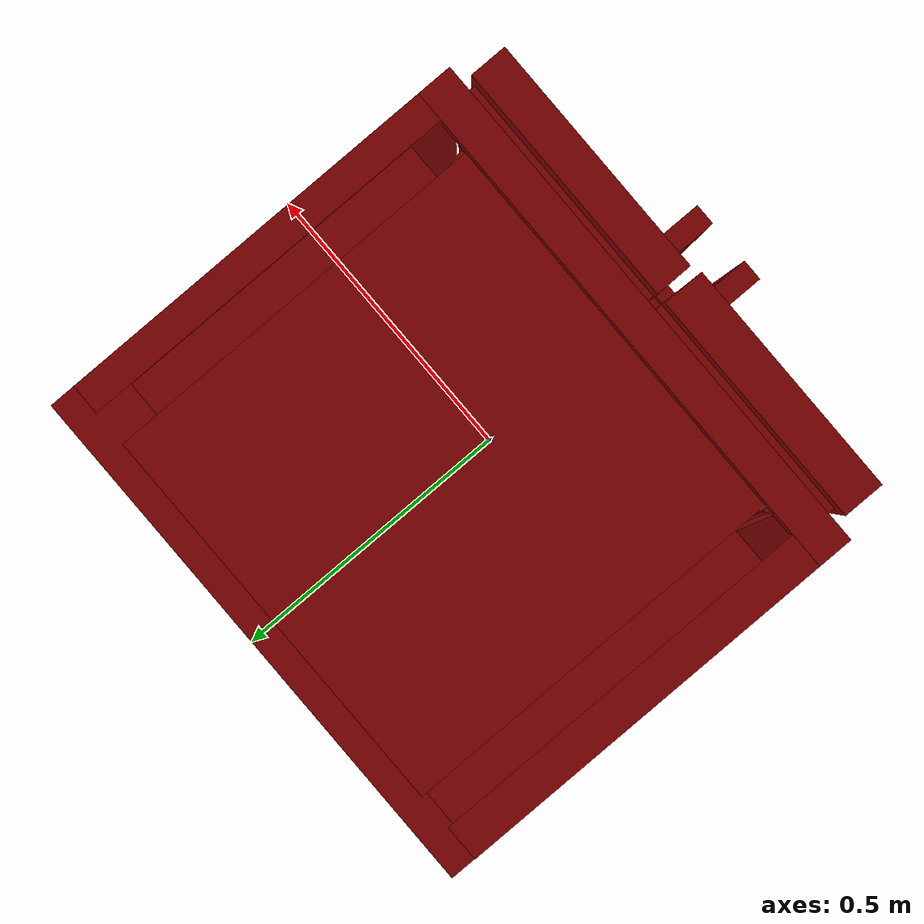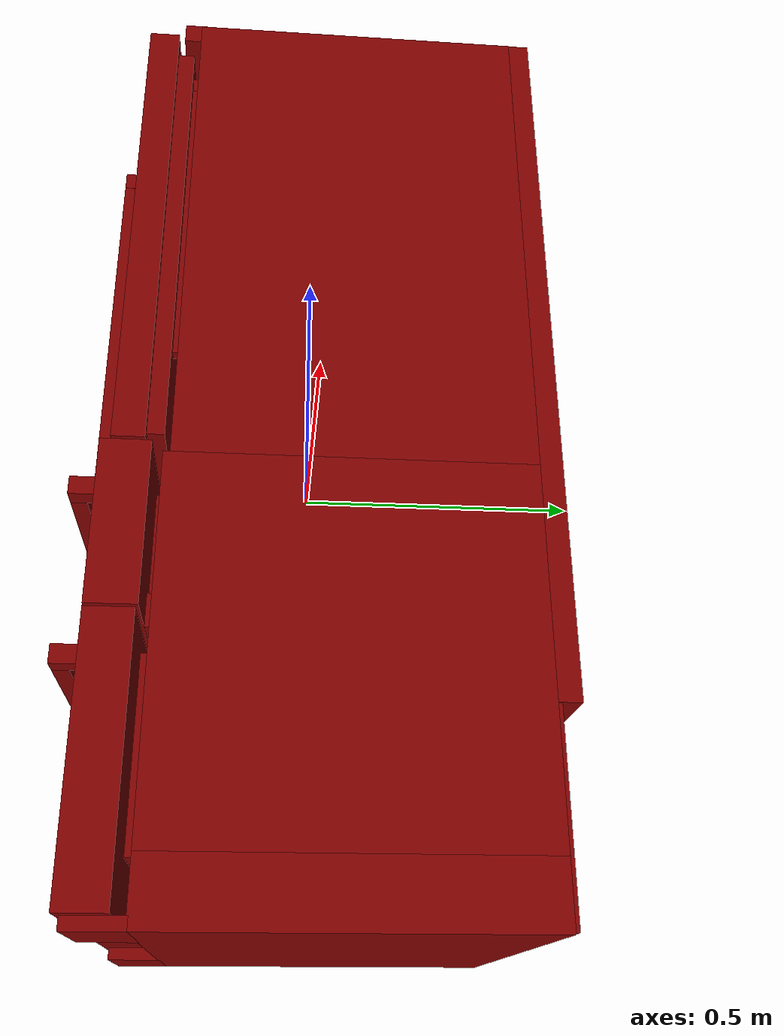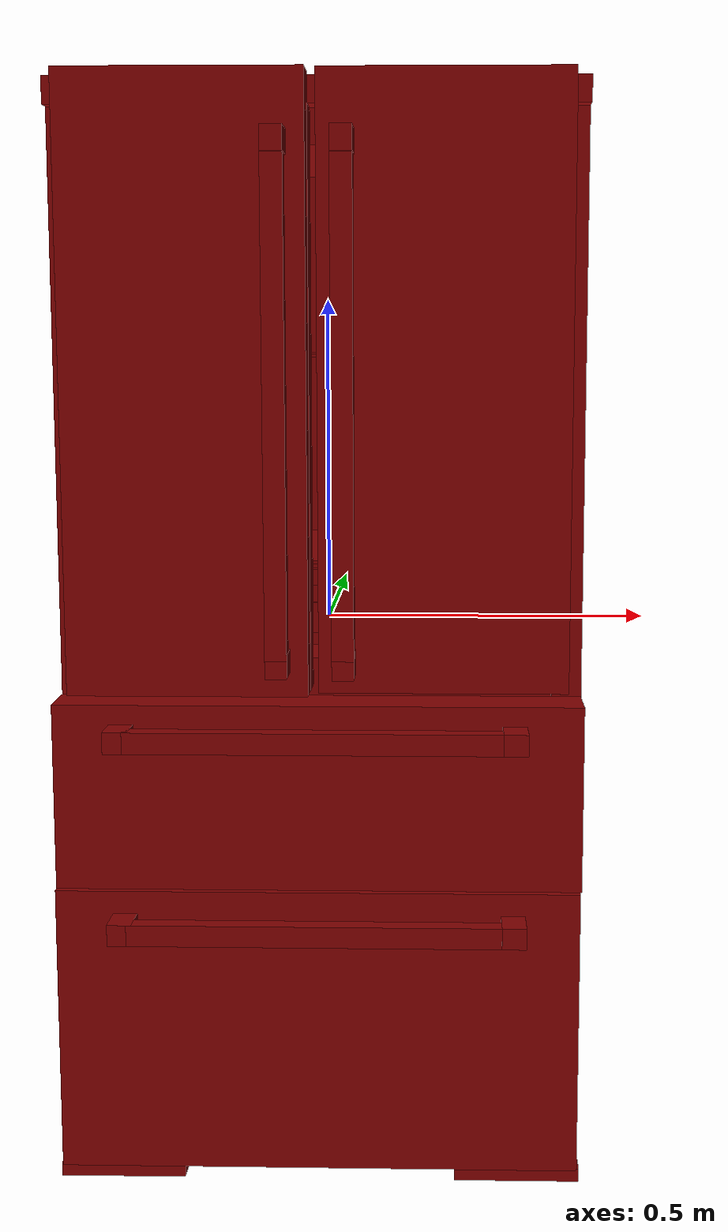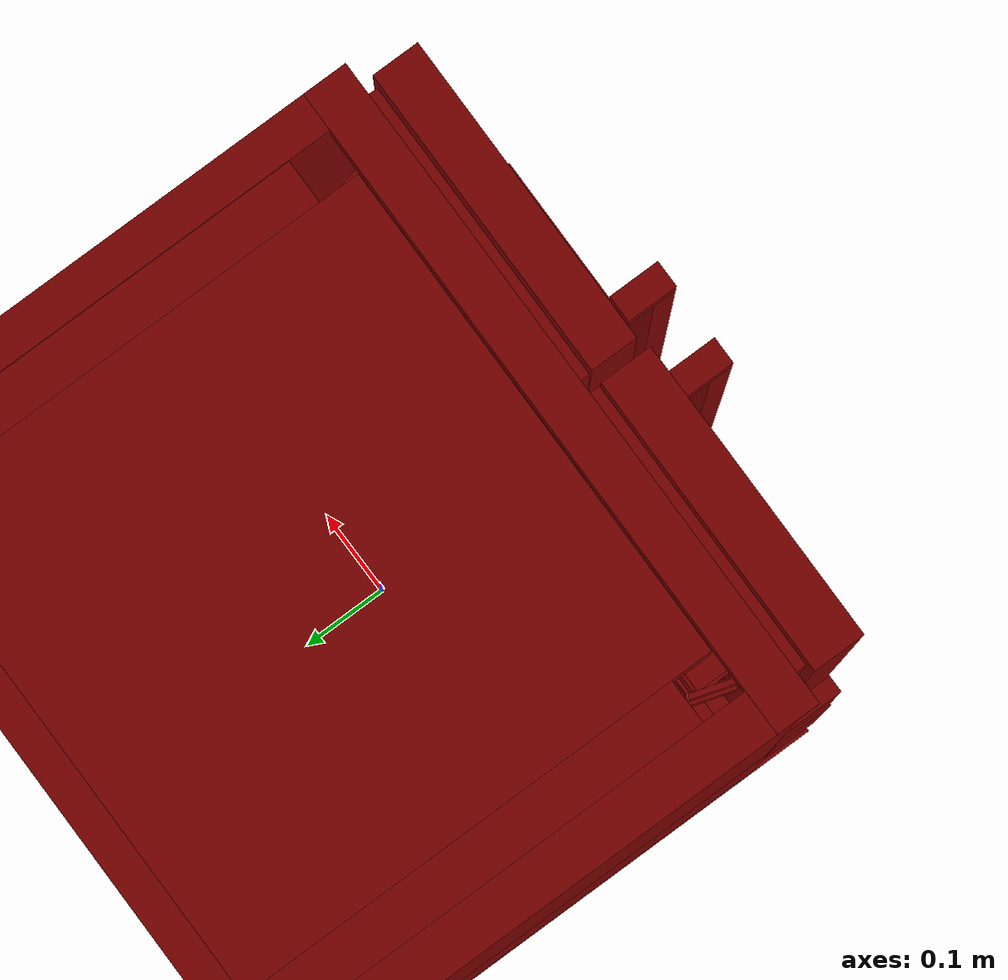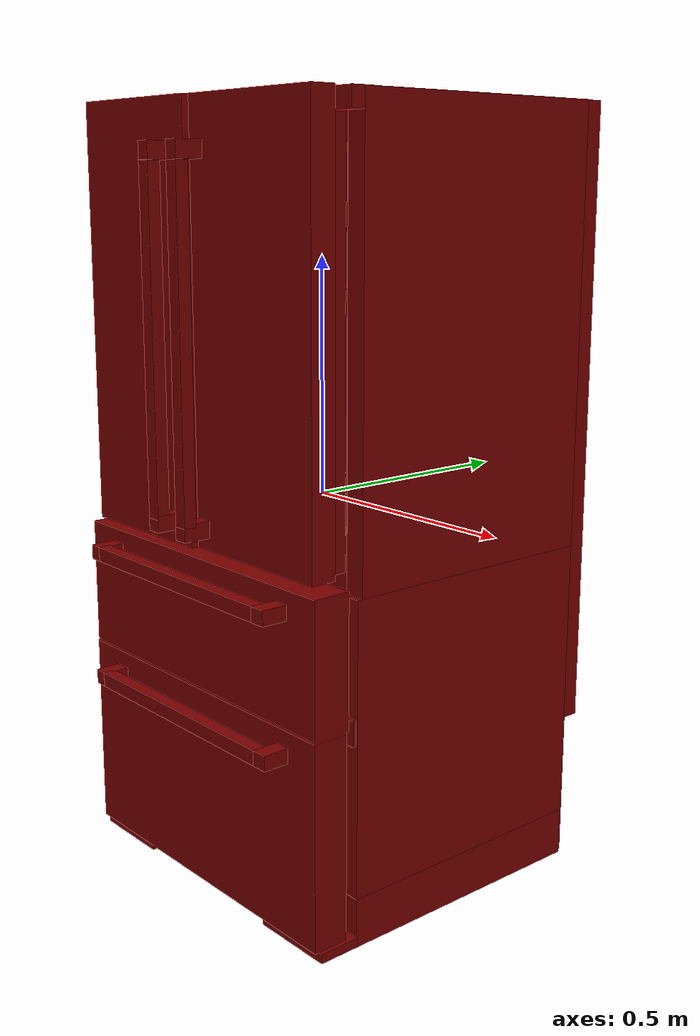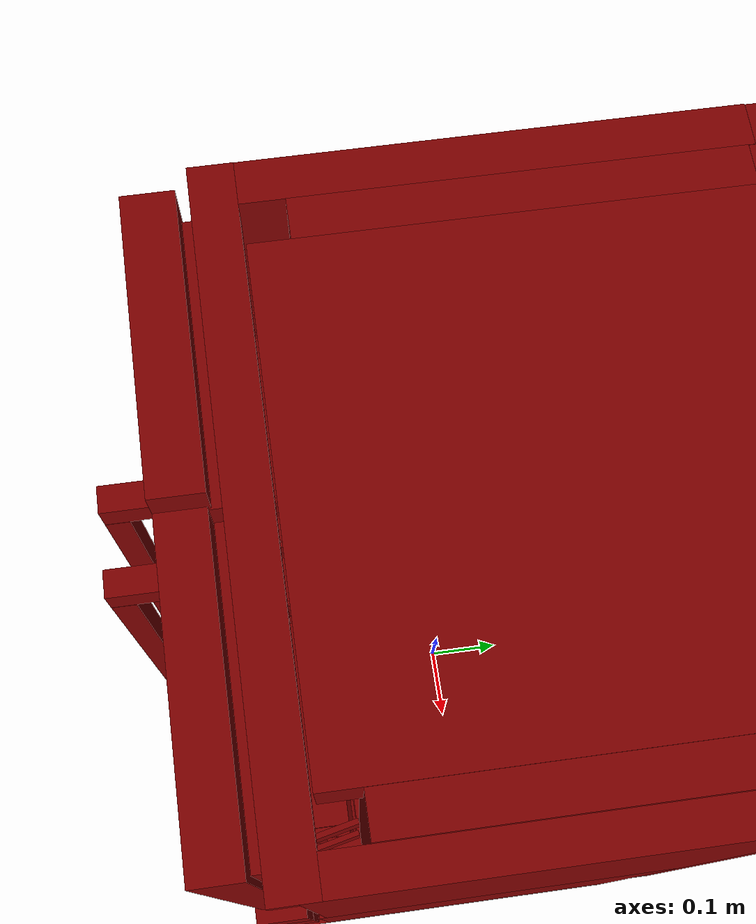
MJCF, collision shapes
<mujoco model="model">
  <compiler angle="radian"/>
  <asset>
    <mesh file="visuals/Body001.obj" name="Body001_vis"/>
    <mesh file="visuals/Body001_Clear.obj" name="Body001_Clear_vis"/>
    <mesh file="visuals/Door001.obj" name="Door001_vis"/>
    <mesh file="visuals/Door001_Clear.obj" name="Door001_Clear_vis"/>
    <mesh file="visuals/Door002.obj" name="Door002_vis"/>
    <mesh file="visuals/Door002_Clear.obj" name="Door002_Clear_vis"/>
    <mesh file="visuals/Drawer001.obj" name="Drawer001_vis"/>
    <mesh file="visuals/Drawer002.obj" name="Drawer002_vis"/>
    <mesh file="visuals/Drawer003.obj" name="Drawer003_vis"/>
    <texture file="visuals/T_BC001.png" name="Body001_material" type="2d"/>
    <material name="Body001_material" rgba="1 1 1 1.0" texture="Body001_material" shininess="0.6585055291652679" specular="0.8"/>
    <material name="Body001_Clear_material" rgba="0.749724805355072 0.749724805355072 0.749724805355072 0.4000000059604645" shininess="0.2512328028678894" specular="0.8"/>
    <texture file="visuals/T_BC001.png" name="Door001_material" type="2d"/>
    <material name="Door001_material" rgba="1 1 1 1.0" texture="Door001_material" shininess="0.6585055291652679" specular="0.8"/>
    <material name="Door001_Clear_material" rgba="0.749724805355072 0.749724805355072 0.749724805355072 0.4000000059604645" shininess="0.2512328028678894" specular="0.8"/>
    <texture file="visuals/T_BC001.png" name="Door002_material" type="2d"/>
    <material name="Door002_material" rgba="1 1 1 1.0" texture="Door002_material" shininess="0.6585055291652679" specular="0.8"/>
    <material name="Door002_Clear_material" rgba="0.749724805355072 0.749724805355072 0.749724805355072 0.4000000059604645" shininess="0.2512328028678894" specular="0.8"/>
    <texture file="visuals/T_BC001.png" name="Drawer001_material" type="2d"/>
    <material name="Drawer001_material" rgba="1 1 1 1.0" texture="Drawer001_material" shininess="0.6585055291652679" specular="0.8"/>
    <texture file="visuals/T_BC001.png" name="Drawer002_material" type="2d"/>
    <material name="Drawer002_material" rgba="1 1 1 1.0" texture="Drawer002_material" shininess="0.6585055291652679" specular="0.8"/>
    <texture file="visuals/T_BC001.png" name="Drawer003_material" type="2d"/>
    <material name="Drawer003_material" rgba="1 1 1 1.0" texture="Drawer003_material" shininess="0.6585055291652679" specular="0.8"/>
  </asset>
  <default>
    <default class="visual">
      <geom conaffinity="0" contype="0" group="1" type="mesh"/>
    </default>
    <default class="collision">
      <geom group="0" rgba="0.5 0 0 0.5"/>
    </default>
    <default class="spawn">
      <geom group="0" rgba="1 1 1 0.5" contype="0" conaffinity="0"/>
      <site group="0" rgba="1 1 1 0.5"/>
    </default>
    <default class="region">
      <geom group="1" conaffinity="0" contype="0" rgba="0 1 0 0"/>
    </default>
  </default>
  <worldbody>
    <body>
      <body name="object">
        <geom mesh="Body001_vis" type="mesh" solimp="0.998 0.998 0.001" solref="0.001 1" density="100" friction="0.95 0.3 0.1" class="visual" material="Body001_material"/>
        <geom class="collision" type="box" pos="0.365221 0.065412 0.352220" size="0.021883942186832428 0.29296648502349854 0.4524274468421936" quat="1.0 0.0 0.0 0.0"/>
        <geom class="collision" type="box" pos="-0.360983 0.062870 0.346918" size="0.026121947914361954 0.2955096960067749 0.45772966742515564" quat="1.0 0.0 0.0 0.0"/>
        <geom class="collision" type="box" pos="0.000223 0.346318 0.158425" size="0.3868793547153473 0.04920476675033569 0.6455352902412415" quat="1.0 0.0 0.0 0.0"/>
        <geom class="collision" type="box" pos="-0.001632 0.309967 -0.449267" size="0.38457879424095154 0.055480800569057465 0.352914422750473" quat="1.0 0.0 0.0 0.0"/>
        <geom class="collision" type="box" pos="-0.000583 0.137604 -0.633016" size="0.35854974389076233 0.10725203901529312 0.061925146728754044" quat="0.8052064180374146 0.5929946303367615 -1.3167124518090139e-16 1.2232067335595694e-24"/>
        <geom class="collision" type="box" pos="0.004080 0.077655 0.760747" size="0.2884826362133026 0.28072765469551086 0.045429423451423645" quat="1.0 0.0 0.0 0.0"/>
        <geom class="collision" type="box" pos="-0.000583 0.076543 -0.071556" size="0.35848572850227356 0.2862388491630554 0.03860562667250633" quat="1.0 0.0 0.0 0.0"/>
        <geom class="collision" type="box" pos="-0.338108 0.059857 -0.401475" size="0.04899631440639496 0.29852595925331116 0.30139559507369995" quat="1.0 0.0 0.0 0.0"/>
        <geom class="collision" type="box" pos="0.342874 0.059857 -0.401475" size="0.04423099011182785 0.29852670431137085 0.30139675736427307" quat="1.0 0.0 0.0 0.0"/>
        <geom class="collision" type="box" pos="-0.001632 -0.209651 -0.361343" size="0.38458558917045593 0.03633183613419533 0.02589232288300991" quat="1.0 0.0 0.0 0.0"/>
        <geom class="collision" type="box" pos="0.000000 0.059858 -0.753058" size="0.3871029019355774 0.2985268831253052 0.0519971065223217" quat="1.0 0.0 0.0 0.0"/>
        <geom class="collision" type="box" pos="-0.000583 0.200064 -0.598458" size="0.35854974389076233 0.10667490214109421 0.07130120694637299" quat="0.6569743752479553 0.7539129257202148 -1.6740228450452978e-16 8.92800271459846e-24"/>
        <geom class="collision" type="box" pos="0.300738 0.072701 0.346918" size="0.04173048585653305 0.22914721071720123 0.4577496647834778" quat="1.0 0.0 0.0 0.0"/>
        <geom class="collision" type="box" pos="-0.290123 0.097650 0.346918" size="0.04507717862725258 0.25294435024261475 0.45775076746940613" quat="1.0 0.0 0.0 0.0"/>
        <geom class="collision" type="box" pos="0.000012 -0.231676 0.785627" size="0.3870919346809387 0.025594176724553108 0.019428035244345665" quat="1.0 0.0 0.0 0.0"/>
        <geom class="collision" type="box" pos="0.294629 -0.281048 -0.794980" size="0.09247613698244095 0.04488630220293999 0.010075867176055908" quat="1.0 0.0 0.0 0.0"/>
        <geom class="collision" type="box" pos="-0.294283 -0.281048 -0.794980" size="0.09282137453556061 0.044886354357004166 0.010075912810862064" quat="1.0 0.0 0.0 0.0"/>
        <body name="Body001_Clear">
          <geom mesh="Body001_Clear_vis" type="mesh" solimp="0.998 0.998 0.001" solref="0.001 1" density="100" friction="0.95 0.3 0.1" class="visual" material="Body001_Clear_material"/>
          <geom class="collision" type="box" pos="0.004300 0.080540 0.415243" size="0.2578120231628418 0.23192143440246582 0.0024863099679350853" quat="1.0 0.0 0.0 0.0"/>
          <geom class="collision" type="box" pos="0.004300 0.080540 0.103727" size="0.2578120231628418 0.23192211985588074 0.0024863744620233774" quat="1.0 0.0 0.0 0.0"/>
        </body>
        <body name="fridge_left_door">
          <joint axis="0.0 0.0 -1.0" pos="-0.343438 -0.301233 0.364783" limited="true" name="fridge_left_door_joint" range="0.0 1.5707963267948966" type="hinge" damping="1" frictionloss="1" armature=".01" stiffness="0.05"/>
          <geom mesh="Door001_vis" type="mesh" solimp="0.998 0.998 0.001" solref="0.001 1" density="100" friction="0.95 0.3 0.1" class="visual" material="Door001_material"/>
          <geom class="collision" type="box" pos="-0.051805 -0.379713 0.340539" size="0.015476449392735958 0.013592430390417576 0.3459145426750183" quat="1.0 0.0 0.0 0.0" name="fridge_left_door_handle_main"/>
          <geom class="collision" type="box" pos="-0.185412 -0.301305 0.369553" size="0.17394804954528809 0.029942452907562256 0.43771201372146606" quat="1.0 0.0 0.0 0.0" name="fridge_left_door_main"/>
          <geom class="collision" type="box" pos="-0.179535 -0.271560 0.348084" size="0.169550359249115 0.02694264054298401 0.41441255807876587" quat="1.0 0.0 0.0 0.0"/>
          <geom class="collision" type="box" pos="-0.056939 -0.250413 0.347338" size="0.011535625904798508 0.026942642405629158 0.3783116936683655" quat="1.0 0.0 0.0 0.0"/>
          <geom class="collision" type="box" pos="-0.319788 -0.250413 0.419822" size="0.009782965295016766 0.026942642405629158 0.30562931299209595" quat="1.0 0.0 0.0 0.0"/>
          <geom class="collision" type="box" pos="-0.190570 -0.250413 0.715642" size="0.11949507147073746 0.02694264054298401 0.01004157867282629" quat="1.0 0.0 0.0 0.0"/>
          <geom class="collision" type="box" pos="-0.051805 -0.363911 0.705189" size="0.015477153472602367 0.029393699020147324 0.01756278984248638" quat="1.0 0.0 0.0 0.0" name="fridge_left_door_handle_1"/>
          <geom class="collision" type="box" pos="-0.051805 -0.363911 -0.014314" size="0.015477169305086136 0.029393699020147324 0.01669370010495186" quat="1.0 0.0 0.0 0.0" name="fridge_left_door_handle_2"/>
          <body name="Door001_Clear">
            <geom mesh="Door001_Clear_vis" type="mesh" solimp="0.998 0.998 0.001" solref="0.001 1" density="100" friction="0.95 0.3 0.1" class="visual" material="Door001_Clear_material"/>
            <geom class="collision" type="box" pos="-0.192060 -0.223839 0.406884" size="0.11058793216943741 0.05434567481279373 0.0026560176629573107" quat="1.0 0.0 0.0 0.0"/>
            <geom class="collision" type="box" pos="-0.073562 -0.194985 0.427777" size="0.003092939266934991 0.02805575355887413 0.021901151165366173" quat="0.9885798096656799 0.0 0.0 0.15069818496704102"/>
            <geom class="collision" type="box" pos="-0.190036 -0.175212 0.443922" size="0.11059349030256271 0.0017140626441687346 0.004185756202787161" quat="0.9622097015380859 -0.2723095715045929 -0.0 0.0"/>
            <geom class="collision" type="box" pos="-0.081534 -0.250621 0.427777" size="0.0028704835567623377 0.01288655772805214 0.021901151165366173" quat="0.9840865731239319 0.0 -0.0 -0.1776898056268692"/>
            <geom class="collision" type="box" pos="-0.097246 -0.271573 0.429525" size="0.0033591128885746002 0.01288655772805214 0.019200073555111885" quat="0.8508251905441284 0.0 -0.0 -0.5254489183425903"/>
            <geom class="collision" type="box" pos="-0.114135 -0.277116 0.427479" size="0.0019354462856426835 0.005980806425213814 0.017154110595583916" quat="0.7541599273681641 0.0 -0.0 -0.6566908359527588"/>
            <geom class="collision" type="box" pos="-0.191568 -0.277332 0.414984" size="0.07109253853559494 0.0015521845780313015 0.005146943964064121" quat="1.0 0.0 0.0 0.0"/>
            <geom class="collision" type="box" pos="-0.075892 -0.227033 0.427777" size="0.0038647258188575506 0.01288655772805214 0.021901151165366173" quat="0.9840865731239319 0.0 -0.0 -0.1776898056268692"/>
            <geom class="collision" type="box" pos="-0.308199 -0.227033 0.429478" size="0.0038647258188575506 0.01288655772805214 0.021901151165366173" quat="0.9840865731239319 0.0 0.0 0.1776898205280304"/>
            <geom class="collision" type="box" pos="-0.269956 -0.277116 0.429181" size="0.0019354462856426835 0.005980806425213814 0.017154110595583916" quat="0.7541599273681641 0.0 0.0 0.6566908359527588"/>
            <geom class="collision" type="box" pos="-0.286845 -0.271573 0.431227" size="0.0033591128885746002 0.01288655772805214 0.019200073555111885" quat="0.8508251905441284 0.0 0.0 0.5254489183425903"/>
            <geom class="collision" type="box" pos="-0.302557 -0.250621 0.429478" size="0.0028704835567623377 0.01288655772805214 0.021901151165366173" quat="0.9840865731239319 0.0 0.0 0.1776898205280304"/>
            <geom class="collision" type="box" pos="-0.310529 -0.194985 0.429478" size="0.003092939266934991 0.02805575355887413 0.021901151165366173" quat="0.9885798096656799 0.0 -0.0 -0.15069817006587982"/>
            <geom class="collision" type="box" pos="-0.190036 -0.175212 0.602728" size="0.11059349030256271 0.0017140626441687346 0.004185756202787161" quat="0.9622097015380859 -0.2723095715045929 -0.0 0.0"/>
            <geom class="collision" type="box" pos="-0.310529 -0.194985 0.588284" size="0.003092939266934991 0.02805575355887413 0.021901151165366173" quat="0.9885798096656799 0.0 -0.0 -0.15069817006587982"/>
            <geom class="collision" type="box" pos="-0.302557 -0.250621 0.588284" size="0.0028704835567623377 0.01288655772805214 0.021901151165366173" quat="0.9840865731239319 0.0 0.0 0.1776898205280304"/>
            <geom class="collision" type="box" pos="-0.286845 -0.271573 0.590033" size="0.0033591128885746002 0.01288655772805214 0.019200073555111885" quat="0.8508251905441284 0.0 0.0 0.5254489183425903"/>
            <geom class="collision" type="box" pos="-0.269956 -0.277116 0.587987" size="0.0019354462856426835 0.005980806425213814 0.017154110595583916" quat="0.7541599273681641 0.0 0.0 0.6566908359527588"/>
            <geom class="collision" type="box" pos="-0.308199 -0.227033 0.588284" size="0.0038647258188575506 0.01288655772805214 0.021901151165366173" quat="0.9840865731239319 0.0 0.0 0.1776898205280304"/>
            <geom class="collision" type="box" pos="-0.075892 -0.227033 0.586583" size="0.0038647258188575506 0.01288655772805214 0.021901151165366173" quat="0.9840865731239319 0.0 -0.0 -0.1776898056268692"/>
            <geom class="collision" type="box" pos="-0.114135 -0.277116 0.586285" size="0.0019354462856426835 0.005980806425213814 0.017154110595583916" quat="0.7541599273681641 0.0 -0.0 -0.6566908359527588"/>
            <geom class="collision" type="box" pos="-0.097246 -0.271573 0.588331" size="0.0033591128885746002 0.01288655772805214 0.019200073555111885" quat="0.8508251905441284 0.0 -0.0 -0.5254489183425903"/>
            <geom class="collision" type="box" pos="-0.081534 -0.250621 0.586583" size="0.0028704835567623377 0.01288655772805214 0.021901151165366173" quat="0.9840865731239319 0.0 -0.0 -0.1776898056268692"/>
            <geom class="collision" type="box" pos="-0.073562 -0.194985 0.586583" size="0.003092939266934991 0.02805575355887413 0.021901151165366173" quat="0.9885798096656799 0.0 0.0 0.15069818496704102"/>
            <geom class="collision" type="box" pos="-0.191568 -0.277332 0.573791" size="0.07109261304140091 0.0015521845780313015 0.005146951414644718" quat="1.0 0.0 0.0 0.0"/>
            <geom class="collision" type="box" pos="-0.192060 -0.223839 0.565690" size="0.11059463024139404 0.05434567481279373 0.002656175522133708" quat="1.0 0.0 0.0 0.0"/>
          </body>
        </body>
        <body name="fridge_right_door">
          <joint axis="0.0 0.0 1.0" pos="0.351006 -0.297487 0.364786" limited="true" name="fridge_right_door_joint" range="0.0 1.5707963267948966" type="hinge" damping="1" frictionloss="1" armature=".01" stiffness="0.05"/>
          <geom mesh="Door002_vis" type="mesh" solimp="0.998 0.998 0.001" solref="0.001 1" density="100" friction="0.95 0.3 0.1" class="visual" material="Door002_material"/>
          <geom class="collision" type="box" pos="0.182492 -0.298531 0.371680" size="0.1791578233242035 0.02716769278049469 0.435" quat="1.0 0.0 0.0 0.0" name="fridge_right_door_main"/>
          <geom class="collision" type="box" pos="0.179414 -0.255914 0.354358" size="0.17474804818630219 0.014486254192888737 0.408201664686203" quat="1.0 0.0 0.0 0.0"/>
          <geom class="collision" type="box" pos="0.197527 -0.249353 0.711882" size="0.13392356038093567 0.027177613228559494 0.01372672338038683" quat="1.0 0.0 0.0 0.0"/>
          <geom class="collision" type="box" pos="0.321511 -0.249353 0.410225" size="0.009670224972069263 0.027177615091204643 0.2948033809661865" quat="1.0 0.0 0.0 0.0"/>
          <geom class="collision" type="box" pos="0.054646 -0.249353 0.337614" size="0.011458216235041618 0.027177615091204643 0.3674013316631317" quat="1.0 0.0 0.0 0.0"/>
          <geom class="collision" type="box" pos="0.041794 -0.363911 -0.015183" size="0.01547718420624733 0.029393699020147324 0.01756281964480877" quat="1.0 0.0 0.0 0.0" name="fridge_right_door_handle_2"/>
          <geom class="collision" type="box" pos="0.041794 -0.363911 0.705189" size="0.015477199107408524 0.029393699020147324 0.017562834545969963" quat="1.0 0.0 0.0 0.0" name="fridge_right_door_handle_1"/>
          <geom class="collision" type="box" pos="0.041794 -0.379713 0.340539" size="0.015477214008569717 0.013592430390417576 0.34593939781188965" quat="1.0 0.0 0.0 0.0" name="fridge_right_door_handle_main"/>
          <body name="Door002_Clear">
            <geom mesh="Door002_Clear_vis" type="mesh" solimp="0.998 0.998 0.001" solref="0.001 1" density="100" friction="0.95 0.3 0.1" class="visual" material="Door002_Clear_material"/>
            <geom class="collision" type="box" pos="0.185447 -0.219106 0.565867" size="0.11692734062671661 0.05434567481279373 0.00310175190679729" quat="1.0 0.0 0.0 0.0"/>
            <geom class="collision" type="box" pos="0.186699 -0.276890 0.572968" size="0.0901479423046112 0.0015521845780313015 0.005656151100993156" quat="1.0 0.0 0.0 0.0"/>
            <geom class="collision" type="box" pos="0.061667 -0.223652 0.588582" size="0.0038647258188575506 0.01288655772805214 0.021901151165366173" quat="0.9840865731239319 0.0 0.0 0.1776898205280304"/>
            <geom class="collision" type="box" pos="0.093827 -0.276611 0.585240" size="0.0019354462856426835 0.005980806425213814 0.017154110595583916" quat="0.7541599273681641 0.0 0.0 0.6566908359527588"/>
            <geom class="collision" type="box" pos="0.077873 -0.269876 0.589858" size="0.0033591128885746002 0.01288655772805214 0.019200073555111885" quat="0.8973978161811829 0.0 0.0 0.4412223994731903"/>
            <geom class="collision" type="box" pos="0.067477 -0.247631 0.589890" size="0.0028704835567623377 0.01288655772805214 0.021901151165366173" quat="0.9953531622886658 0.0 0.0 0.09629158675670624"/>
            <geom class="collision" type="box" pos="0.060318 -0.190252 0.589080" size="0.003092939266934991 0.02805575169622898 0.021901151165366173" quat="0.9940382242202759 0.0 -0.0 -0.10903210192918777"/>
            <geom class="collision" type="box" pos="0.188432 -0.169646 0.605592" size="0.11775068938732147 0.0017140626441687346 0.004185756202787161" quat="0.9622097015380859 -0.2723095715045929 -0.0 0.0"/>
            <geom class="collision" type="box" pos="0.310447 -0.190252 0.589080" size="0.003092939266934991 0.02805575169622898 0.021901151165366173" quat="0.9940382242202759 0.0 0.0 0.10903210937976837"/>
            <geom class="collision" type="box" pos="0.306047 -0.247631 0.589890" size="0.0028704835567623377 0.01288655772805214 0.021901151165366173" quat="0.9953531622886658 0.0 -0.0 -0.09629159420728683"/>
            <geom class="collision" type="box" pos="0.296165 -0.269876 0.589858" size="0.0033591128885746002 0.01288655772805214 0.019200073555111885" quat="0.8973978161811829 0.0 -0.0 -0.4412223994731903"/>
            <geom class="collision" type="box" pos="0.280211 -0.276611 0.585240" size="0.0019354462856426835 0.005980806425213814 0.017154110595583916" quat="0.7541599273681641 0.0 -0.0 -0.6566908359527588"/>
            <geom class="collision" type="box" pos="0.310238 -0.223652 0.588582" size="0.0038647258188575506 0.01288655772805214 0.021901151165366173" quat="0.9840865135192871 0.0 -0.0 -0.17768986523151398"/>
            <geom class="collision" type="box" pos="0.186699 -0.276890 0.418571" size="0.09014802426099777 0.0015521845780313015 0.005656158085912466" quat="1.0 0.0 0.0 0.0"/>
            <geom class="collision" type="box" pos="0.185447 -0.219106 0.411916" size="0.11692781001329422 0.05434567481279373 0.002656190190464258" quat="1.0 0.0 0.0 0.0"/>
            <geom class="collision" type="box" pos="0.188432 -0.169646 0.451195" size="0.11775068938732147 0.0017140626441687346 0.004185756202787161" quat="0.9622097015380859 -0.2723095715045929 -0.0 0.0"/>
            <geom class="collision" type="box" pos="0.310447 -0.190252 0.434683" size="0.003092939266934991 0.02805575169622898 0.021901151165366173" quat="0.9940382242202759 0.0 0.0 0.10903210937976837"/>
            <geom class="collision" type="box" pos="0.060318 -0.190252 0.434683" size="0.003092939266934991 0.02805575169622898 0.021901151165366173" quat="0.9940382242202759 0.0 -0.0 -0.10903210192918777"/>
            <geom class="collision" type="box" pos="0.306047 -0.247631 0.435493" size="0.0028704835567623377 0.01288655772805214 0.021901151165366173" quat="0.9953531622886658 0.0 -0.0 -0.09629159420728683"/>
            <geom class="collision" type="box" pos="0.067477 -0.247631 0.435493" size="0.0028704835567623377 0.01288655772805214 0.021901151165366173" quat="0.9953531622886658 0.0 0.0 0.09629158675670624"/>
            <geom class="collision" type="box" pos="0.296165 -0.269876 0.435461" size="0.0033591128885746002 0.01288655772805214 0.019200073555111885" quat="0.8973978161811829 0.0 -0.0 -0.4412223994731903"/>
            <geom class="collision" type="box" pos="0.077873 -0.269876 0.435461" size="0.0033591128885746002 0.01288655772805214 0.019200073555111885" quat="0.8973978161811829 0.0 0.0 0.4412223994731903"/>
            <geom class="collision" type="box" pos="0.280211 -0.276611 0.430843" size="0.0019354462856426835 0.005980806425213814 0.017154110595583916" quat="0.7541599273681641 0.0 -0.0 -0.6566908359527588"/>
            <geom class="collision" type="box" pos="0.093827 -0.276611 0.430843" size="0.0019354462856426835 0.005980806425213814 0.017154110595583916" quat="0.7541599273681641 0.0 0.0 0.6566908359527588"/>
            <geom class="collision" type="box" pos="0.310238 -0.223652 0.434185" size="0.0038647258188575506 0.01288655772805214 0.021901151165366173" quat="0.9840865135192871 0.0 -0.0 -0.17768986523151398"/>
            <geom class="collision" type="box" pos="0.061667 -0.223652 0.434185" size="0.0038647258188575506 0.01288655772805214 0.021901151165366173" quat="0.9840865731239319 0.0 0.0 0.1776898205280304"/>
          </body>
        </body>
        <body name="freezer0">
          <joint axis="0.0 -1.0 0.0" pos="0.001014 -0.133832 -0.565124" limited="true" name="freezer0_door_joint" range="0.0 0.4" type="slide" damping="1" frictionloss="1" armature=".01" stiffness="0.05"/>
          <geom mesh="Drawer001_vis" type="mesh" solimp="0.998 0.998 0.001" solref="0.001 1" density="100" friction="0.95 0.3 0.1" class="visual" material="Drawer001_material"/>
          <geom class="collision" type="box" pos="0.003462 -0.109648 -0.686204" size="0.22163920104503632 0.15478265285491943 0.0027201969642192125" quat="1.0 0.0 0.0 0.0"/>
          <geom class="collision" type="box" pos="0.219829 -0.105770 -0.553231" size="0.02784782648086548 0.15864557027816772 0.13464730978012085" quat="1.0 0.0 0.0 0.0"/>
          <geom class="collision" type="box" pos="0.003463 0.070073 -0.580778" size="0.24033810198307037 0.008362683467566967 0.09997935593128204" quat="0.9911026954650879 -0.13309930264949799 0.0 0.0"/>
          <geom class="collision" type="box" pos="-0.000121 -0.299845 -0.569467" size="0.38272878527641296 0.03866834193468094 0.21259479224681854" quat="1.0 0.0 0.0 0.0"/>
          <geom class="collision" type="box" pos="0.000663 -0.073244 -0.621978" size="0.008593862876296043 0.12671664357185364 0.06990315765142441" quat="1.0 0.0 0.0 0.0"/>
          <geom class="collision" type="box" pos="0.225421 0.051791 -0.548165" size="0.020509198307991028 0.11963428556919098 0.034643225371837616" quat="0.796074390411377 0.6051988005638123 1.343811153374047e-16 -1.0018506990580435e-22"/>
          <geom class="collision" type="box" pos="-0.225615 0.051791 -0.548165" size="0.020509198307991028 0.11963428556919098 0.034643225371837616" quat="0.796074390411377 0.6051988005638123 1.343811153374047e-16 -1.0018506990580435e-22"/>
          <geom class="collision" type="box" pos="0.003393 -0.234167 -0.542982" size="0.2627294957637787 0.0309009812772274 0.15255071222782135" quat="1.0 0.0 0.0 0.0"/>
          <geom class="collision" type="box" pos="-0.001879 -0.379713 -0.405716" size="0.26910457015037537 0.013592430390417576 0.015477221459150314" quat="1.0 0.0 0.0 0.0"/>
          <geom class="collision" type="box" pos="0.284862 -0.363911 -0.405716" size="0.01756289228796959 0.029393699020147324 0.015477233566343784" quat="1.0 0.0 0.0 0.0"/>
          <geom class="collision" type="box" pos="-0.280757 -0.363911 -0.405716" size="0.017562907189130783 0.029393699020147324 0.015477248467504978" quat="1.0 0.0 0.0 0.0"/>
          <geom class="collision" type="box" pos="-0.219118 -0.105770 -0.553231" size="0.025755496695637703 0.15865816175937653 0.13464730978012085" quat="1.0 0.0 0.0 0.0"/>
          <geom class="region" name="reg_freezer0_l" type="box" pos="-0.10 -0.082 -0.557" size="0.085 0.115 0.125"/>
          <geom class="region" name="reg_freezer0_r" type="box" pos="0.10 -0.082 -0.557" size="0.085 0.115 0.125"/>
        </body>
        <body name="freezer1">
          <joint axis="0.0 -1.0 0.0" pos="0.001014 -0.075512 -0.216558" limited="true" name="freezer1_door_joint" range="0.0 0.4" type="slide" damping="1" frictionloss="1" armature=".01" stiffness="0.05"/>
          <geom mesh="Drawer002_vis" type="mesh" solimp="0.998 0.998 0.001" solref="0.001 1" density="100" friction="0.95 0.3 0.1" class="visual" material="Drawer002_material"/>
          <geom class="collision" type="box" pos="-0.007315 -0.060784 -0.331286" size="0.22138048708438873 0.20362739264965057 0.0027201951015740633" quat="1.0 0.0 0.0 0.0"/>
          <geom class="collision" type="box" pos="0.220746 -0.056905 -0.239134" size="0.028469989076256752 0.20750996470451355 0.08867991715669632" quat="1.0 0.0 0.0 0.0"/>
          <geom class="collision" type="box" pos="-0.214451 -0.056905 -0.239134" size="0.023944109678268433 0.20751018822193146 0.08868004381656647" quat="1.0 0.0 0.0 0.0"/>
          <geom class="collision" type="box" pos="0.003518 0.163191 -0.260360" size="0.24008996784687042 0.008406518027186394 0.08296908438205719" quat="0.9585145711898804 -0.2850435972213745 9.149510929898043e-18 2.302646245811321e-18"/>
          <geom class="collision" type="box" pos="0.001695 -0.297898 -0.216637" size="0.3824079632759094 0.04073173925280571 0.13647471368312836" quat="1.0 0.0 0.0 0.0"/>
          <geom class="collision" type="box" pos="0.000721 -0.032564 -0.279956" size="0.008584978058934212 0.1673877090215683 0.047866106033325195" quat="1.0 0.0 0.0 0.0"/>
          <geom class="collision" type="box" pos="0.220746 0.038038 -0.177462" size="0.028470372781157494 0.20549361407756805 0.028351524844765663" quat="1.0 0.0 0.0 0.0"/>
          <geom class="collision" type="box" pos="0.220746 0.134772 -0.227904" size="0.018643945455551147 0.04744146391749382 0.0580790638923645" quat="0.9578086137771606 -0.2874067723751068 -6.3817123224809e-17 -2.024741478083862e-24"/>
          <geom class="collision" type="box" pos="-0.220336 0.134772 -0.227904" size="0.018643945455551147 0.04744146391749382 0.0580790638923645" quat="0.9578086137771606 -0.2874067723751068 -6.3817123224809e-17 -2.024741478083862e-24"/>
          <geom class="collision" type="box" pos="-0.220336 0.038038 -0.178128" size="0.028470396995544434 0.20549383759498596 0.0276859812438488" quat="1.0 0.0 0.0 0.0"/>
          <geom class="collision" type="box" pos="-0.002049 0.226514 -0.195533" size="0.24674595892429352 0.017031649127602577 0.010282968170940876" quat="1.0 0.0 0.0 0.0"/>
          <geom class="collision" type="box" pos="0.003806 -0.228364 -0.222287" size="0.24851921200752258 0.03516469523310661 0.10881463438272476" quat="1.0 0.0 0.0 0.0"/>
          <geom class="collision" type="box" pos="-0.280757 -0.363911 -0.123849" size="0.017562922090291977 0.029393699020147324 0.015477264299988747" quat="1.0 0.0 0.0 0.0"/>
          <geom class="collision" type="box" pos="0.284862 -0.363911 -0.123849" size="0.01756293699145317 0.029393699020147324 0.01547727920114994" quat="1.0 0.0 0.0 0.0"/>
          <geom class="collision" type="box" pos="-0.001879 -0.379713 -0.123849" size="0.2691057622432709 0.013592430390417576 0.015477297827601433" quat="1.0 0.0 0.0 0.0"/>
          <geom class="region" name="reg_freezer1_l" type="box" pos="-0.10 -0.035 -0.23" size="0.085 0.155 0.097"/>
          <geom class="region" name="reg_freezer1_r" type="box" pos="0.10 -0.035 -0.23" size="0.085 0.155 0.097"/>
        </body>
        <body name="fridge_drawer0">
          <joint axis="0.0 -1.0 0.0" pos="0.007914 0.045099 0.034111" limited="true" name="fridge_drawer0_joint" range="0.0 0.325" type="slide" damping="1" frictionloss="1" armature=".01" stiffness="0.05"/>
          <geom mesh="Drawer003_vis" type="mesh" solimp="0.998 0.998 0.001" solref="0.001 1" density="100" friction="0.95 0.3 0.1" class="visual" material="Drawer003_material"/>
          <geom class="collision" type="box" pos="0.008087 -0.134980 0.085406" size="0.19737645983695984 0.007127725053578615 0.006802691146731377" quat="1.0 0.0 0.0 0.0"/>
          <geom class="collision" type="box" pos="-0.209909 0.045491 0.034377" size="0.021897634491324425 0.19014325737953186 0.05790973827242851" quat="1.0 0.0 0.0 0.0"/>
          <geom class="collision" type="box" pos="0.007355 0.226546 0.034377" size="0.19566050171852112 0.010331028141081333 0.05791036784648895" quat="1.0 0.0 0.0 0.0"/>
          <geom class="collision" type="box" pos="0.006660 0.043276 -0.014036" size="0.23699535429477692 0.1879308670759201 0.010060291737318039" quat="1.0 0.0 0.0 0.0"/>
          <geom class="collision" type="box" pos="0.008087 -0.143226 0.079983" size="0.19737647473812103 0.0017362789949402213 0.012096093967556953" quat="1.0 0.0 0.0 0.0"/>
          <geom class="collision" type="box" pos="0.008087 -0.136293 0.017924" size="0.19737492501735687 0.008400548249483109 0.02294149249792099" quat="1.0 0.0 0.0 0.0"/>
          <geom class="collision" type="box" pos="0.008087 -0.126265 0.043858" size="0.19737647473812103 0.0017362789949402213 0.048016659915447235" quat="1.0 0.0 0.0 0.0"/>
          <geom class="collision" type="box" pos="0.176815 -0.134929 0.063430" size="0.029539743438363075 0.010116309858858585 0.021811433136463165" quat="1.0 0.0 0.0 0.0"/>
          <geom class="collision" type="box" pos="0.226140 0.045475 0.034377" size="0.021860258653759956 0.1901286542415619 0.057910170406103134" quat="1.0 0.0 0.0 0.0"/>
          <geom class="collision" type="box" pos="0.006485 -0.126959 0.060545" size="0.14187918603420258 0.002305061789229512 0.021040746942162514" quat="1.0 0.0 0.0 0.0"/>
          <geom class="collision" type="box" pos="-0.163431 -0.134929 0.063430" size="0.029539743438363075 0.010116365738213062 0.021811502054333687" quat="1.0 0.0 0.0 0.0"/>
          <geom class="region" name="reg_fridge_drawer0" type="box" pos="0.007 0.045 0.047" size="0.192 0.165 0.05"/>
        </body>
        <geom class="region" name="reg_main" type="box" pos="0.0 0.029806 0.0" size="0.387105 0.365717 0.808"/>
        <geom class="region" name="reg_fridge_shelf0" type="box" pos="0.005 0.07 0.257" size="0.245 0.21 0.15"/>
        <geom class="region" name="reg_fridge_shelf1" type="box" pos="0.005 0.07 0.569" size="0.245 0.21 0.15"/>
      </body>
    </body>
  </worldbody>
  <actuator>
    <motor name="fridge_left_door_joint_actuator" joint="fridge_left_door_joint" gear="50"/>
    <motor name="fridge_right_door_joint_actuator" joint="fridge_right_door_joint" gear="50"/>
    <motor name="freezer0_door_joint_actuator" joint="freezer0_door_joint" gear="50"/>
    <motor name="freezer1_door_joint_actuator" joint="freezer1_door_joint" gear="50"/>
    <motor name="fridge_drawer0_joint_joint_actuator" joint="fridge_drawer0_joint" gear="50"/>
  </actuator>
</mujoco>
